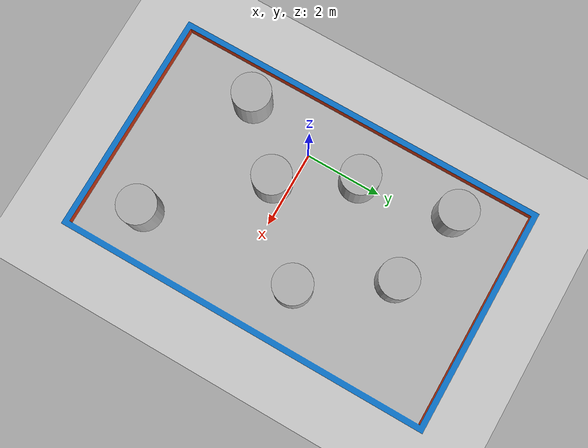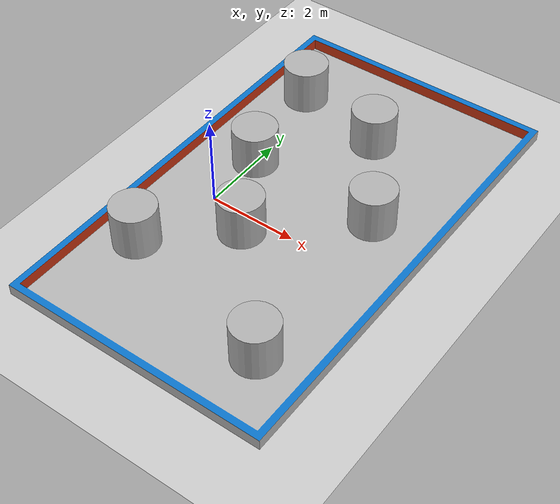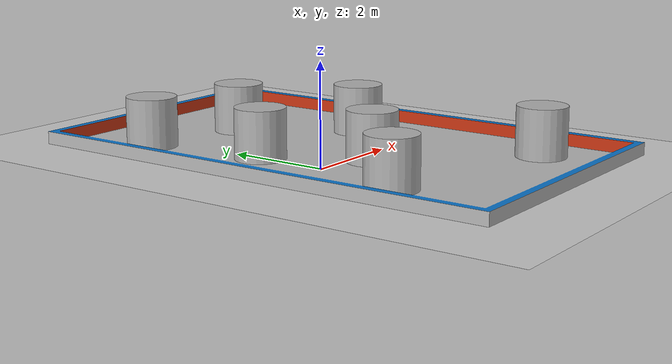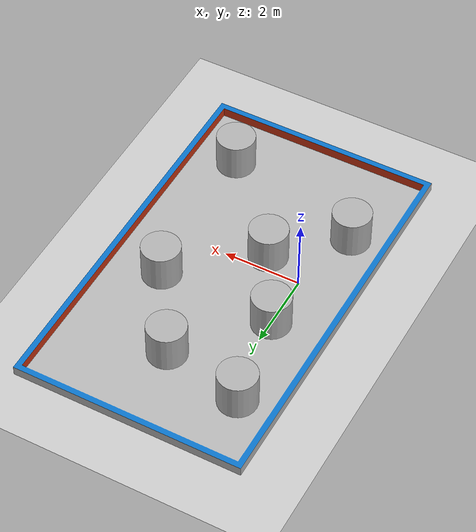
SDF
<sdf version='1.9'>
  <world name='empty'>
    <physics name='1ms' type='ignored'>
      <max_step_size>0.001</max_step_size>
      <real_time_factor>1</real_time_factor>
      <real_time_update_rate>1000</real_time_update_rate>
    </physics>
    <plugin name='gz::sim::systems::Physics' filename='gz-sim-physics-system'/>
    <plugin name='gz::sim::systems::UserCommands' filename='gz-sim-user-commands-system'/>
    <plugin name='gz::sim::systems::SceneBroadcaster' filename='gz-sim-scene-broadcaster-system'/>
    <plugin name='gz::sim::systems::Sensors' filename='gz-sim-sensors-system'>
      <render_engine>ogre2</render_engine>
    </plugin>
    <plugin name='gz::sim::systems::Contact' filename='gz-sim-contact-system'/>
    <gravity>0 0 -9.8</gravity>
    <magnetic_field>6e-06 2.3e-05 -4.2e-05</magnetic_field>
    <atmosphere type='adiabatic'/>
    <scene>
      <ambient>0.4 0.4 0.4 1</ambient>
      <background>0.7 0.7 0.7 1</background>
      <shadows>true</shadows>
    </scene>
    <model name='ground_plane'>
      <static>true</static>
      <link name='link'>
        <collision name='collision'>
          <geometry>
            <plane>
              <normal>0 0 1</normal>
              <size>100 100</size>
            </plane>
          </geometry>
          <surface>
            <friction>
              <ode/>
            </friction>
            <bounce/>
            <contact/>
          </surface>
        </collision>
        <visual name='visual'>
          <geometry>
            <plane>
              <normal>0 0 1</normal>
              <size>100 100</size>
            </plane>
          </geometry>
          <material>
            <ambient>0.8 0.8 0.8 1</ambient>
            <diffuse>0.8 0.8 0.8 1</diffuse>
            <specular>0.8 0.8 0.8 1</specular>
          </material>
        </visual>
        <pose>0 0 0 0 -0 0</pose>
        <inertial>
          <pose>0 0 0 0 -0 0</pose>
          <mass>1</mass>
          <inertia>
            <ixx>1</ixx>
            <ixy>0</ixy>
            <ixz>0</ixz>
            <iyy>1</iyy>
            <iyz>0</iyz>
            <izz>1</izz>
          </inertia>
        </inertial>
        <enable_wind>false</enable_wind>
      </link>
      <pose>0 0 0 0 -0 0</pose>
      <self_collide>false</self_collide>
    </model>
    <model name='line_to_follow'>
      <link name='link'>
        <visual name='visual'>
          <geometry>
            <mesh>
              <uri>file:///home/wanchana/ros2/dev_ws/src/my_bot/meshes/line_to_follow.dae</uri>
            </mesh>
          </geometry>
        </visual>
        <collision name='collision'>
          <geometry>
            <mesh>
              <uri>file:///home/wanchana/ros2/dev_ws/src/my_bot/meshes/line_to_follow.dae</uri>
            </mesh>
          </geometry>
        </collision>
        <pose>0 0 0 0 -0 0</pose>
        <inertial>
          <pose>0 0 0 0 -0 0</pose>
          <mass>1</mass>
          <inertia>
            <ixx>1</ixx>
            <ixy>0</ixy>
            <ixz>0</ixz>
            <iyy>1</iyy>
            <iyz>0</iyz>
            <izz>1</izz>
          </inertia>
        </inertial>
        <enable_wind>false</enable_wind>
      </link>
      <pose>1.51642 0.641859 -0 -0 0 -0.000448</pose>
      <static>false</static>
      <self_collide>false</self_collide>
    </model>
    <model name='cylinder'>
      <pose>-0.001647 1.41911 0.501995 -0 -0 0</pose>
      <link name='cylinder_link'>
        <inertial>
          <inertia>
            <ixx>0.14580000000000001</ixx>
            <ixy>0</ixy>
            <ixz>0</ixz>
            <iyy>0.14580000000000001</iyy>
            <iyz>0</iyz>
            <izz>0.125</izz>
          </inertia>
          <mass>1</mass>
          <pose>0 0 0 0 -0 0</pose>
        </inertial>
        <collision name='cylinder_collision'>
          <geometry>
            <cylinder>
              <radius>0.5</radius>
              <length>1</length>
            </cylinder>
          </geometry>
          <surface>
            <friction>
              <ode/>
            </friction>
            <bounce/>
            <contact/>
          </surface>
        </collision>
        <visual name='cylinder_visual'>
          <geometry>
            <cylinder>
              <radius>0.5</radius>
              <length>1</length>
            </cylinder>
          </geometry>
          <material>
            <ambient>0.3 0.3 0.3 1</ambient>
            <diffuse>0.7 0.7 0.7 1</diffuse>
            <specular>1 1 1 1</specular>
          </material>
        </visual>
        <pose>0 0 0 0 -0 0</pose>
        <enable_wind>false</enable_wind>
      </link>
      <static>false</static>
      <self_collide>false</self_collide>
    </model>
    <model name='cylinder_0'>
      <pose>1.05115 -0.415834 0.501999 0 -0 0</pose>
      <link name='cylinder_link'>
        <inertial>
          <inertia>
            <ixx>0.14580000000000001</ixx>
            <ixy>0</ixy>
            <ixz>0</ixz>
            <iyy>0.14580000000000001</iyy>
            <iyz>0</iyz>
            <izz>0.125</izz>
          </inertia>
          <mass>1</mass>
          <pose>0 0 0 0 -0 0</pose>
        </inertial>
        <collision name='cylinder_collision'>
          <geometry>
            <cylinder>
              <radius>0.5</radius>
              <length>1</length>
            </cylinder>
          </geometry>
          <surface>
            <friction>
              <ode/>
            </friction>
            <bounce/>
            <contact/>
          </surface>
        </collision>
        <visual name='cylinder_visual'>
          <geometry>
            <cylinder>
              <radius>0.5</radius>
              <length>1</length>
            </cylinder>
          </geometry>
          <material>
            <ambient>0.3 0.3 0.3 1</ambient>
            <diffuse>0.7 0.7 0.7 1</diffuse>
            <specular>1 1 1 1</specular>
          </material>
        </visual>
        <pose>0 0 0 0 -0 0</pose>
        <enable_wind>false</enable_wind>
      </link>
      <static>false</static>
      <self_collide>false</self_collide>
    </model>
    <model name='cylinder_1'>
      <pose>1.70443 3.38983 0.501992 -0 -0 0</pose>
      <link name='cylinder_link'>
        <inertial>
          <inertia>
            <ixx>0.14580000000000001</ixx>
            <ixy>0</ixy>
            <ixz>0</ixz>
            <iyy>0.14580000000000001</iyy>
            <iyz>0</iyz>
            <izz>0.125</izz>
          </inertia>
          <mass>1</mass>
          <pose>0 0 0 0 -0 0</pose>
        </inertial>
        <collision name='cylinder_collision'>
          <geometry>
            <cylinder>
              <radius>0.5</radius>
              <length>1</length>
            </cylinder>
          </geometry>
          <surface>
            <friction>
              <ode/>
            </friction>
            <bounce/>
            <contact/>
          </surface>
        </collision>
        <visual name='cylinder_visual'>
          <geometry>
            <cylinder>
              <radius>0.5</radius>
              <length>1</length>
            </cylinder>
          </geometry>
          <material>
            <ambient>0.3 0.3 0.3 1</ambient>
            <diffuse>0.7 0.7 0.7 1</diffuse>
            <specular>1 1 1 1</specular>
          </material>
        </visual>
        <pose>0 0 0 0 -0 0</pose>
        <enable_wind>false</enable_wind>
      </link>
      <static>false</static>
      <self_collide>false</self_collide>
    </model>
    <model name='cylinder_2'>
      <pose>3.05147 1.31262 0.501999 -0 0 -0</pose>
      <link name='cylinder_link'>
        <inertial>
          <inertia>
            <ixx>0.14580000000000001</ixx>
            <ixy>0</ixy>
            <ixz>0</ixz>
            <iyy>0.14580000000000001</iyy>
            <iyz>0</iyz>
            <izz>0.125</izz>
          </inertia>
          <mass>1</mass>
          <pose>0 0 0 0 -0 0</pose>
        </inertial>
        <collision name='cylinder_collision'>
          <geometry>
            <cylinder>
              <radius>0.5</radius>
              <length>1</length>
            </cylinder>
          </geometry>
          <surface>
            <friction>
              <ode/>
            </friction>
            <bounce/>
            <contact/>
          </surface>
        </collision>
        <visual name='cylinder_visual'>
          <geometry>
            <cylinder>
              <radius>0.5</radius>
              <length>1</length>
            </cylinder>
          </geometry>
          <material>
            <ambient>0.3 0.3 0.3 1</ambient>
            <diffuse>0.7 0.7 0.7 1</diffuse>
            <specular>1 1 1 1</specular>
          </material>
        </visual>
        <pose>0 0 0 0 -0 0</pose>
        <enable_wind>false</enable_wind>
      </link>
      <static>false</static>
      <self_collide>false</self_collide>
    </model>
    <model name='cylinder_3'>
      <pose>-0.472028 -1.86714 0.501999 0 -0 -0</pose>
      <link name='cylinder_link'>
        <inertial>
          <inertia>
            <ixx>0.14580000000000001</ixx>
            <ixy>0</ixy>
            <ixz>0</ixz>
            <iyy>0.14580000000000001</iyy>
            <iyz>0</iyz>
            <izz>0.125</izz>
          </inertia>
          <mass>1</mass>
          <pose>0 0 0 0 -0 0</pose>
        </inertial>
        <collision name='cylinder_collision'>
          <geometry>
            <cylinder>
              <radius>0.5</radius>
              <length>1</length>
            </cylinder>
          </geometry>
          <surface>
            <friction>
              <ode/>
            </friction>
            <bounce/>
            <contact/>
          </surface>
        </collision>
        <visual name='cylinder_visual'>
          <geometry>
            <cylinder>
              <radius>0.5</radius>
              <length>1</length>
            </cylinder>
          </geometry>
          <material>
            <ambient>0.3 0.3 0.3 1</ambient>
            <diffuse>0.7 0.7 0.7 1</diffuse>
            <specular>1 1 1 1</specular>
          </material>
        </visual>
        <pose>0 0 0 0 -0 0</pose>
        <enable_wind>false</enable_wind>
      </link>
      <static>false</static>
      <self_collide>false</self_collide>
    </model>
    <model name='cylinder_4'>
      <pose>3.25336 -2.81389 0.501999 0 -0 -0</pose>
      <link name='cylinder_link'>
        <inertial>
          <inertia>
            <ixx>0.14580000000000001</ixx>
            <ixy>0</ixy>
            <ixz>0</ixz>
            <iyy>0.14580000000000001</iyy>
            <iyz>0</iyz>
            <izz>0.125</izz>
          </inertia>
          <mass>1</mass>
          <pose>0 0 0 0 -0 0</pose>
        </inertial>
        <collision name='cylinder_collision'>
          <geometry>
            <cylinder>
              <radius>0.5</radius>
              <length>1</length>
            </cylinder>
          </geometry>
          <surface>
            <friction>
              <ode/>
            </friction>
            <bounce/>
            <contact/>
          </surface>
        </collision>
        <visual name='cylinder_visual'>
          <geometry>
            <cylinder>
              <radius>0.5</radius>
              <length>1</length>
            </cylinder>
          </geometry>
          <material>
            <ambient>0.3 0.3 0.3 1</ambient>
            <diffuse>0.7 0.7 0.7 1</diffuse>
            <specular>1 1 1 1</specular>
          </material>
        </visual>
        <pose>0 0 0 0 -0 0</pose>
        <enable_wind>false</enable_wind>
      </link>
      <static>false</static>
      <self_collide>false</self_collide>
    </model>
    <model name='cylinder_5'>
      <pose>-0.410678 3.83161 0.501999 -0 -0 -0</pose>
      <link name='cylinder_link'>
        <inertial>
          <inertia>
            <ixx>0.14580000000000001</ixx>
            <ixy>0</ixy>
            <ixz>0</ixz>
            <iyy>0.14580000000000001</iyy>
            <iyz>0</iyz>
            <izz>0.125</izz>
          </inertia>
          <mass>1</mass>
          <pose>0 0 0 0 -0 0</pose>
        </inertial>
        <collision name='cylinder_collision'>
          <geometry>
            <cylinder>
              <radius>0.5</radius>
              <length>1</length>
            </cylinder>
          </geometry>
          <surface>
            <friction>
              <ode/>
            </friction>
            <bounce/>
            <contact/>
          </surface>
        </collision>
        <visual name='cylinder_visual'>
          <geometry>
            <cylinder>
              <radius>0.5</radius>
              <length>1</length>
            </cylinder>
          </geometry>
          <material>
            <ambient>0.3 0.3 0.3 1</ambient>
            <diffuse>0.7 0.7 0.7 1</diffuse>
            <specular>1 1 1 1</specular>
          </material>
        </visual>
        <pose>0 0 0 0 -0 0</pose>
        <enable_wind>false</enable_wind>
      </link>
      <static>false</static>
      <self_collide>false</self_collide>
    </model>
    <light name='directionallight' type='directional'>
      <pose>-0.947461 -0.033267 2 0 -0 0</pose>
      <cast_shadows>true</cast_shadows>
      <intensity>1</intensity>
      <direction>0 0 -1</direction>
      <diffuse>0.8 0.8 0.8 1</diffuse>
      <specular>0.2 0.2 0.2 1</specular>
      <attenuation>
        <range>1000</range>
        <linear>0.01</linear>
        <constant>0.90000000000000002</constant>
        <quadratic>0.001</quadratic>
      </attenuation>
      <spot>
        <inner_angle>0</inner_angle>
        <outer_angle>0</outer_angle>
        <falloff>0</falloff>
      </spot>
    </light>
  </world>
</sdf>
